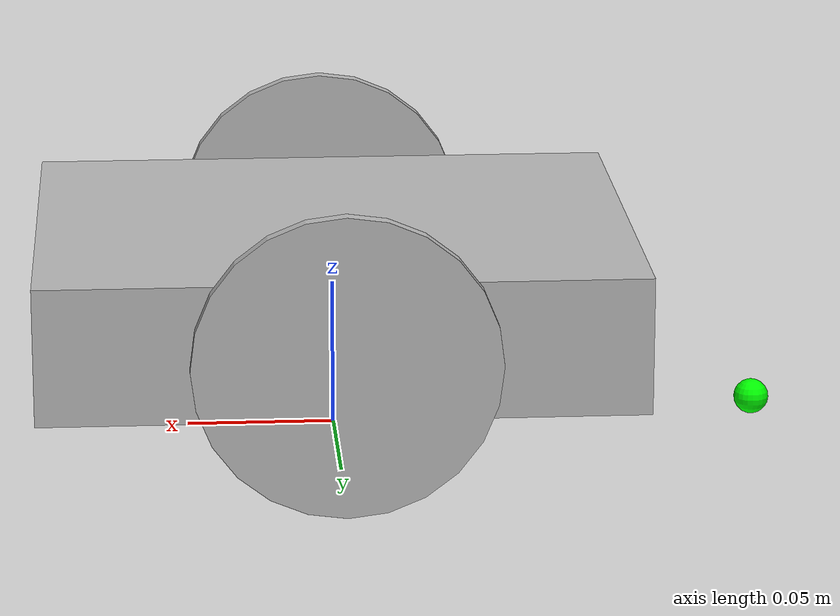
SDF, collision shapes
<?xml version='1.0'?>
<sdf version='1.4'>
    <model name='puzzlebot1' canonical_link='chassis'>

        <!--chassis-->
        <link name='chassis'>
            <pose relative_to='__model__'>0 0 0.05 0 0 0</pose>

            <inertial> <!--inertial properties of the link mass, inertia matix-->
                <mass>0.8</mass>
                <pose>0 0 0 0 0 0</pose>
                <inertia>
                    <ixx>0.07</ixx>
                    <iyy>0.08</iyy>
                    <izz>0.10</izz>
                    <ixy>0</ixy>
                    <ixz>0</ixz>
                    <iyz>0</iyz>
                </inertia>
            </inertial>

            <visual name='visual'>
                <geometry>
                    <mesh>
                        <uri>./meshes/chassis1.dae</uri>
                    </mesh>
                </geometry>
            </visual>

            <collision name='collision'>
                <pose>0 0 0 0 0 0</pose>
                <geometry>
                    <box>
                        <size>0.2 0.16 0.046</size>
                    </box>
                </geometry>
            </collision>

            <sensor name='gpu_lidar' type='gpu_lidar'>"
                <pose relative_to='lidar_frame'>0 0 0 0 0 0</pose>
                <topic>lidar</topic>
                <update_rate>10</update_rate>
                <ray>
                    <scan>
                        <horizontal>
                            <samples>128</samples>
                            <resolution>1</resolution>
                            <min_angle>-0.707</min_angle>
                            <max_angle>0.707</max_angle>
                        </horizontal>
                        <vertical>
                            <samples>1</samples>
                            <resolution>0.01</resolution>
                            <min_angle>0</min_angle>
                            <max_angle>0</max_angle>
                        </vertical>
                    </scan>
                    <range>
                        <min>0.08</min>
                        <max>10.0</max>
                        <resolution>0.01</resolution>
                    </range>
                </ray>
                <always_on>1</always_on>
                <visualize>true</visualize>
            </sensor>
        </link>

        <!--Right wheel-->
        <link name='right_wheel'>
            <pose relative_to="chassis">0.0 -0.095 0 0 0 3.1415</pose> <!--angles are in radian-->

            <inertial>
                <mass>0.05</mass>
                <inertia>
                    <ixx>0.000051</ixx>
                    <iyy>0.000051</iyy>
                    <izz>0.000090</izz>
                    <ixy>0</ixy>
                    <ixz>0</ixz>
                    <iyz>0</iyz>
                </inertia>
            </inertial>

            <visual name='visual'>
                <geometry>
                    <mesh>
                        <uri>./meshes/wheel.dae</uri>
                    </mesh>
                </geometry>
            </visual>

            <collision name='collision'>
                <pose>0 0 0 1.5707 0 0</pose> <!--angles are in radian-->
                <geometry>
                    <cylinder>
                        <radius>0.05</radius>
                        <length>0.005</length>
                    </cylinder>
                </geometry>
                <surface>
                    <friction>
                        <ode>
                            <mu>1.0</mu>
                            <mu2>0.2</mu2>
                        </ode>
                    </friction>
                </surface>
            </collision>

        </link>

        <!--Left wheel-->
        <link name='left_wheel'>
            <pose relative_to="chassis">0.0 0.095 0 0 0 0</pose> <!--angles are in radian-->

            <inertial>
                <mass>0.05</mass>
                <inertia>
                    <ixx>0.000051</ixx>
                    <iyy>0.000051</iyy>
                    <izz>0.000090</izz>
                    <ixy>0</ixy>
                    <ixz>0</ixz>
                    <iyz>0</iyz>
                </inertia>
            </inertial>

            <visual name='visual'>
                <geometry>
                    <mesh>
                        <uri>./meshes/wheel.dae</uri>
                    </mesh>
                </geometry>
            </visual>

            <collision name='collision'>
                <pose>0 0 0 1.5707 0 0</pose> <!--angles are in radian-->
                <geometry>
                    <cylinder>
                        <radius>0.05</radius>
                        <length>0.005</length>
                    </cylinder>
                </geometry>
                <surface>
                    <friction>
                        <ode>
                            <mu>1.0</mu>
                            <mu2>0.2</mu2>
                        </ode>
                    </friction>
                </surface>
            </collision>

        </link>

        <!--arbitrary frame-->
        <frame name="caster_frame" attached_to='chassis'>
            <pose>-0.145 0 -0.044 0 0 0</pose>
        </frame>

        <!--caster wheel-->
        <link name='caster'>
            <pose relative_to='caster_frame'/>

            <inertial>
                <mass>0.01</mass>
                <inertia>
                    <ixx>0.000051</ixx>
                    <iyy>0.000051</iyy>
                    <izz>0.000090</izz>
                    <ixy>0</ixy>
                    <ixz>0</ixz>
                    <iyz>0</iyz>
                </inertia>
            </inertial>

            <visual name='visual'>
                <geometry>
                    <sphere>
                        <radius>0.006</radius>
                    </sphere>
                </geometry>
                <material>
                    <ambient>0.0 1 0.0 1</ambient>
                    <diffuse>0.0 1 0.0 1</diffuse>
                    <specular>0.0 1 0.0 1</specular>
                </material>
            </visual>

            <collision name='collision'>
                <geometry>
                    <sphere>
                        <radius>0.006</radius>
                    </sphere>
                </geometry>
            </collision>
        </link>

        <!--left wheel joint-->
        <joint name='left_wheel_joint' type='revolute'>
            <pose relative_to='left_wheel'/>
            <parent>chassis</parent>
            <child>left_wheel</child>
            <axis>
                <xyz expressed_in='__model__'>0 1 0</xyz> <!--can be descired to any frame or even arbitrary frames-->
                <limit>
                    <lower>-1.79769e+308</lower>    <!--negative infinity-->
                    <upper>1.79769e+308</upper>     <!--positive infinity-->
                    <effort>1</effort>
                </limit>
               <dynamics>
                   <friction>0.1</friction>
               </dynamics>
            </axis>
        </joint>

        <!--right wheel joint-->
        <joint name='right_wheel_joint' type='revolute'>
            <pose relative_to='right_wheel'/>
            <parent>chassis</parent>
            <child>right_wheel</child>
            <axis>
                <xyz expressed_in='__model__'>0 1 0</xyz>
                <limit>
                    <lower>-1.79769e+308</lower>    <!--negative infinity-->
                    <upper>1.79769e+308</upper>     <!--positive infinity-->
                    <effort>1</effort>
                </limit>
               <dynamics>
                   <friction>0.1</friction>
               </dynamics>
            </axis>
        </joint>

        <!--caster wheel joint--> <!--pose defult value is the child-->
        <joint name='caster_wheel' type='ball'>
            <parent>chassis</parent>
            <child>caster</child>
        </joint>

        <!-- Puzzlebot differential drive plugin -->
        <plugin name="DiffDynamicPlugin" filename="libDiffDynamicPlugin.so">
            <leftJoint>left_wheel_joint</leftJoint>
            <rightJoint>right_wheel_joint</rightJoint>
            <cmd_R_topic>cmd_R</cmd_R_topic>
            <cmd_L_topic>cmd_L</cmd_L_topic>
            <cmd_vel_topic>cmd_vel</cmd_vel_topic>
            <enc_R_topic>enc_R</enc_R_topic>
            <enc_L_topic>enc_L</enc_L_topic>
            <mot_Vmax>5</mot_Vmax>
            <mot_J>0.0000007</mot_J>
            <mot_R>3</mot_R>
            <mot_L>0.01</mot_L>
            <mot_K>0.008</mot_K>
            <mot_b>0.000002</mot_b>
            <mot_gear>34</mot_gear>
            <robot_width>0.07</robot_width>
            <wheel_radius>0.03</wheel_radius>
            <pid_Kp>0.1</pid_Kp>
            <pid_Ti>0.05</pid_Ti>
            <pid_Td>0</pid_Td>
            <input_type>3</input_type>
        </plugin>

        <frame name="lidar_frame" attached_to='chassis'>
            <pose>0 0 0.06 0 0 0</pose>
        </frame>

        <plugin
            filename="gz-sim-sensors-system"
            name="gz::sim::systems::Sensors">
            <render_engine>ogre2</render_engine>
        </plugin>

    </model>

</sdf>
